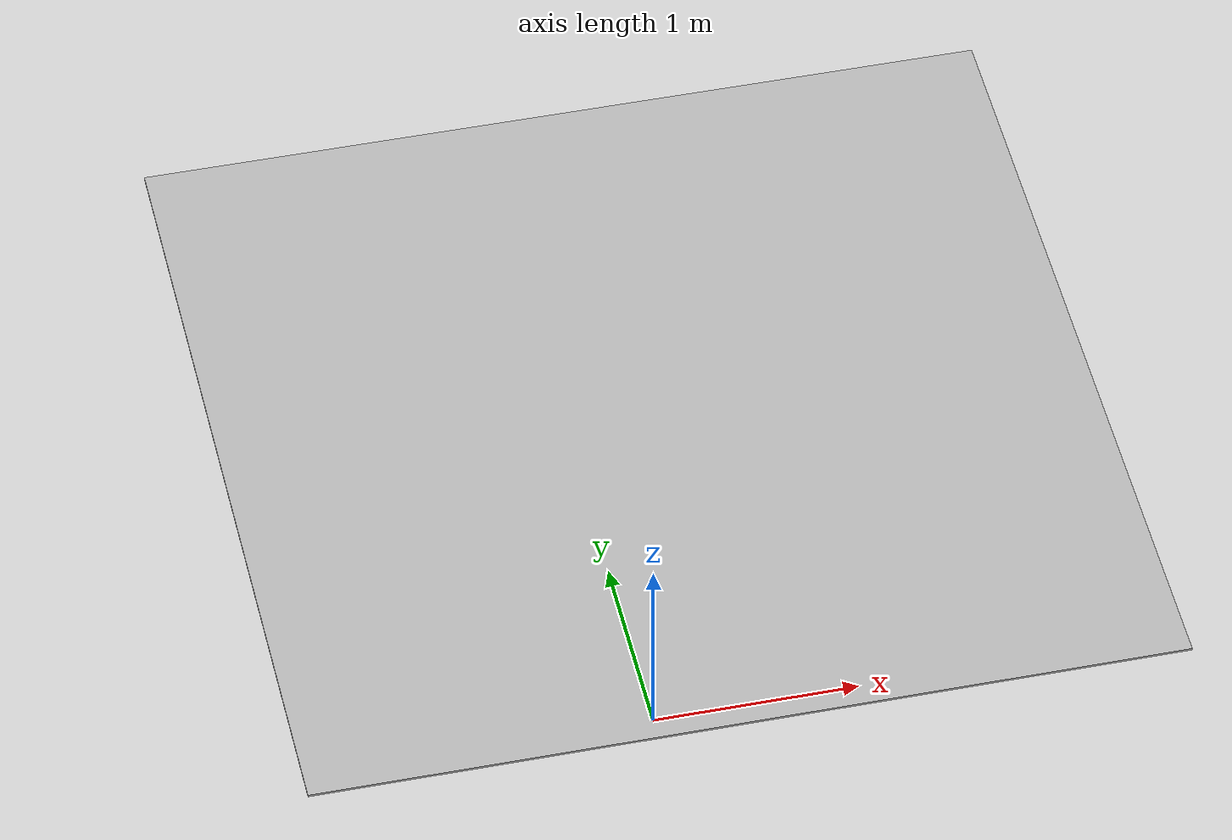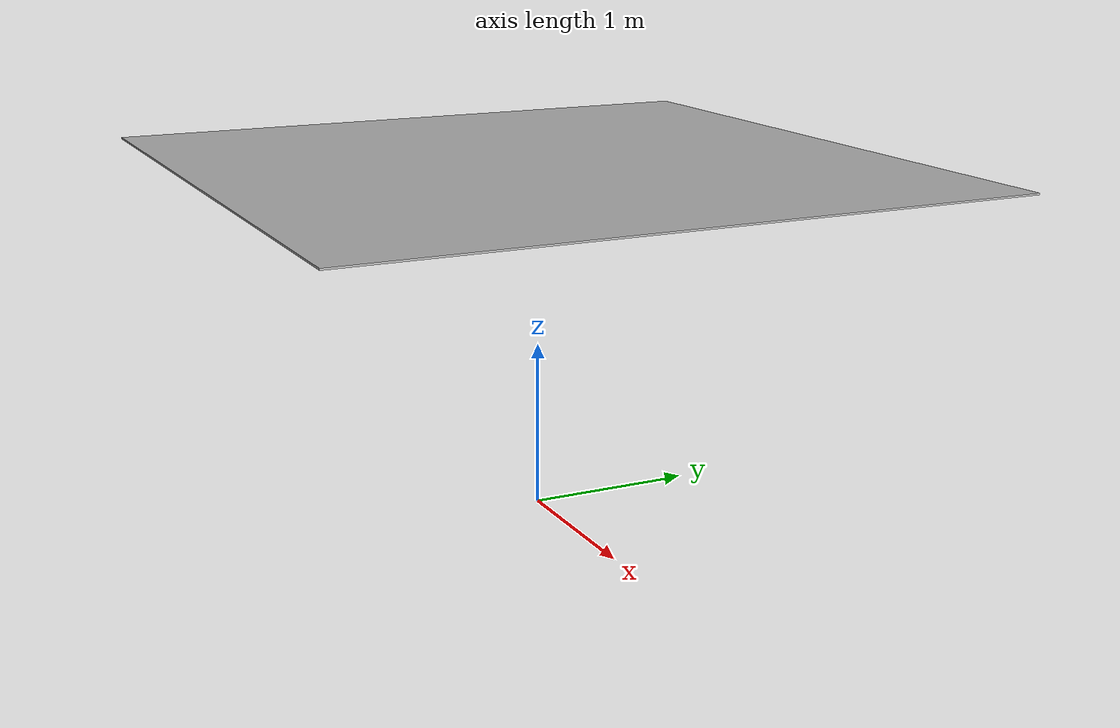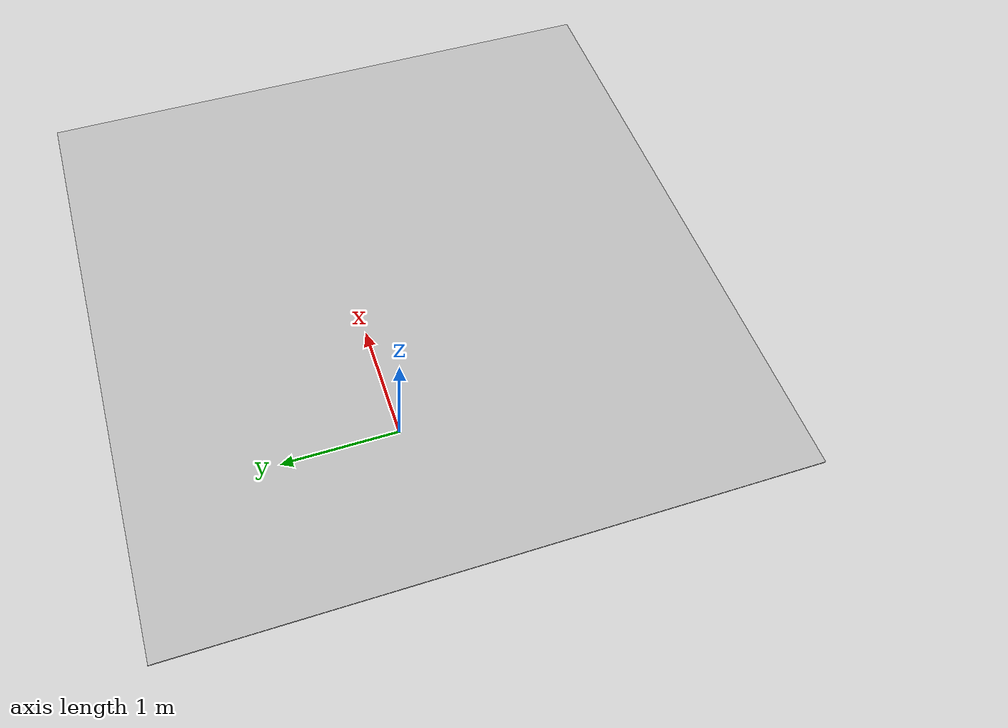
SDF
<?xml version='1.0'?>
<sdf version='1.7'>
  <model name='ceiling_plane'>
    <static>0</static>
    <link name='ceiling'>
      <pose>0 0 2.1 0 -0 0</pose>
      <inertial>
        <inertia>
          <ixx>506.983</ixx>
          <ixy>0</ixy>
          <ixz>0</ixz>
          <iyy>506.983</iyy>
          <iyz>0</iyz>
          <izz>1013.33</izz>
        </inertia>
        <mass>1520</mass>
        <pose>0 0 0 0 -0 0</pose>
      </inertial>
      <self_collide>0</self_collide>
      <enable_wind>0</enable_wind>
      <kinematic>0</kinematic>
      <gravity>0</gravity>
      <visual name='ceiling_visual'>
        <cast_shadows>0</cast_shadows>
        <pose>0 0 0.005 0 -0 1.57</pose>
        <geometry>
          <box>
            <size>4 4 0.01</size>
          </box>
        </geometry>
        <material>
          <script>
            <uri>model://CeilingPlane_Large/materials/scripts</uri>
            <uri>model://CeilingPlane_Large/materials/textures</uri>
            <name>ceilingMat/Checkerboard</name>
          </script>
          <shader type='pixel'>
            <normal_map>__default__</normal_map>
          </shader>
          <emissive>0 0 0 1</emissive>
        </material>
      </visual>
      <collision name='ceiling_collision'>
        <laser_retro>0</laser_retro>
        <max_contacts>10</max_contacts>
        <pose>0 0 0.005 0 -0 0</pose>
        <geometry>
          <box>
            <size>10 2 0.01</size>
          </box>
        </geometry>
        <surface>
          <friction>
            <ode>
              <mu>100000</mu>
              <mu2>100000</mu2>
              <fdir1>0 0 0</fdir1>
              <slip1>0</slip1>
              <slip2>0</slip2>
            </ode>
            <torsional>
              <coefficient>1</coefficient>
              <patch_radius>0</patch_radius>
              <surface_radius>0</surface_radius>
              <use_patch_radius>1</use_patch_radius>
              <ode>
                <slip>0</slip>
              </ode>
            </torsional>
          </friction>
          <bounce>
            <restitution_coefficient>0</restitution_coefficient>
            <threshold>1e+06</threshold>
          </bounce>
          <contact>
            <collide_without_contact>0</collide_without_contact>
            <collide_without_contact_bitmask>1</collide_without_contact_bitmask>
            <collide_bitmask>65535</collide_bitmask>
            <ode>
              <soft_cfm>0</soft_cfm>
              <soft_erp>0.2</soft_erp>
              <kp>1e+13</kp>
              <kd>1</kd>
              <max_vel>0.01</max_vel>
              <min_depth>0</min_depth>
            </ode>
            <bullet>
              <split_impulse>1</split_impulse>
              <split_impulse_penetration_threshold>-0.01</split_impulse_penetration_threshold>
              <soft_cfm>0</soft_cfm>
              <soft_erp>0.2</soft_erp>
              <kp>1e+13</kp>
              <kd>1</kd>
            </bullet>
          </contact>
        </surface>
      </collision>
      <sensor name='ceiling_contact_sensor' type='contact'>
        <always_on>1</always_on>
        <visualize>1</visualize>
        <contact>
          <collision>ceiling_collision</collision>
          <topic>__default_topic__</topic>
        </contact>
        <plugin name='contact_plugin' filename='libgazebo_ros_bumper.so'>
          <bumperTopicName>/ENV/BodyContact</bumperTopicName>
          <frameName>ceiling</frameName>
          <alwaysOn>true</alwaysOn>
          <updateRate>500</updateRate>
        </plugin>
        <pose>0 0 0 0 -0 0</pose>
      </sensor>
    </link>
    <joint name="ceiling_joint" type="fixed">
      <parent>world</parent>
      <child>ceiling</child>
      <pose>0 0 0 0 0 0</pose>
      <physics>
        <ode>
        </ode>
        <provide_feedback>true</provide_feedback>
      </physics>
    </joint>
    <static>0</static>
    <allow_auto_disable>1</allow_auto_disable>

    <plugin name="ForceTorque_Sensor" filename="libgazebo_ros_ft_sensor.so">
      <jointName>ceiling_joint</jointName>
      <topicName>/ENV/Surface_FT_sensor</topicName>
      <updateRate>500</updateRate>
  </plugin>
  </model>
</sdf>
